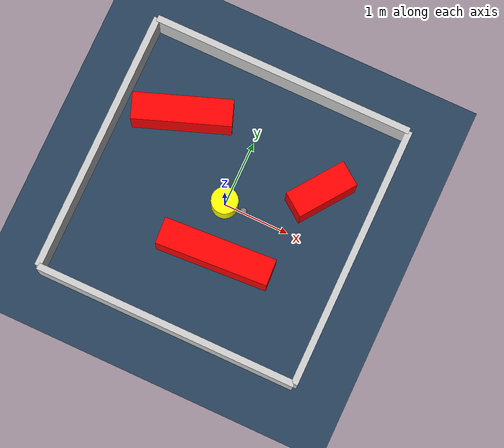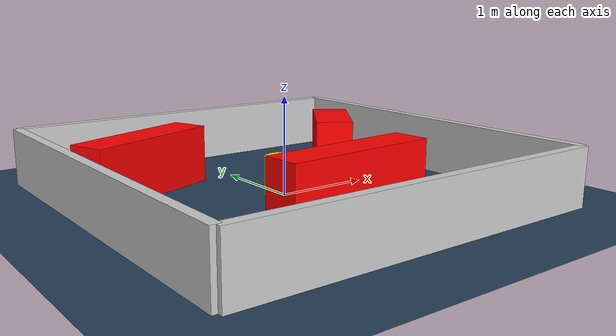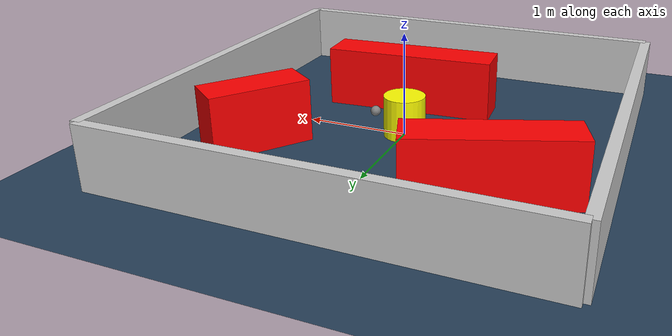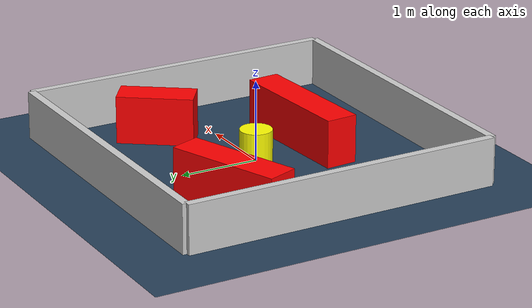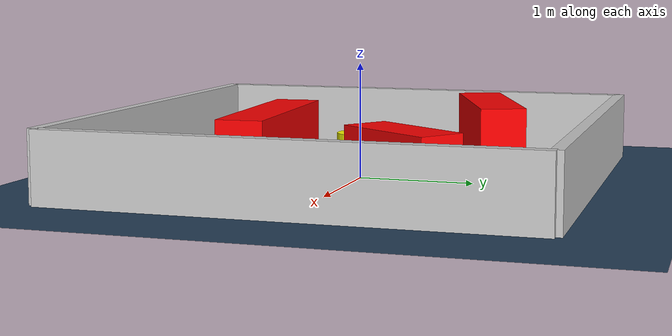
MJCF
<?xml version="1.0" ?>
<mujoco model="generated_environment">
  <option timestep="0.01" integrator="RK4" cone="elliptic"/>
  <default>
    <geom density="1"/>
  </default>
  <asset>
    <texture builtin="gradient" height="3072" rgb1="0.3 0.5 0.7" rgb2="0 0 0" type="skybox" width="512"/>
    <texture builtin="checker" height="300" mark="edge" markrgb="0.8 0.8 0.8" name="groundplane" rgb1="0.2 0.3 0.4" rgb2="0.1 0.2 0.3" type="2d" width="300"/>
    <material name="groundplane" reflectance="0.2" texrepeat="5 5" texture="groundplane" texuniform="true"/>
    <material name="robot" rgba="0.0 1.0 0.0 1"/>
  </asset>
  <worldbody>
    <light dir="0 0 -1" directional="true" pos="0 0 1.5"/>
    <geom condim="4" friction="1.0 0.005 0.001" material="groundplane" name="floor" size="0 0 0.05" type="plane"/>
    <body name="walls">
      <geom name="wall_1" condim="4" pos="-2.0 0.0 0.3" rgba="0.800000011920929 0.800000011920929 0.800000011920929 1.0" size="0.05 2.0 0.3" type="box"/>
      <geom name="wall_2" condim="4" pos="2.0 0.0 0.3" rgba="0.800000011920929 0.800000011920929 0.800000011920929 1.0" size="0.05 2.0 0.3" type="box"/>
      <geom name="wall_3" condim="4" pos="0.0 -2.0 0.3" rgba="0.800000011920929 0.800000011920929 0.800000011920929 1.0" size="2.0 0.05 0.3" type="box"/>
      <geom name="wall_4" condim="4" pos="0.0 2.0 0.3" rgba="0.800000011920929 0.800000011920929 0.800000011920929 1.0" size="2.0 0.05 0.3" type="box"/>
    </body>
    <body name="robot">
      <joint name="joint_x" type="slide" pos="0 0 0" axis="1 0 0"/>
      <joint name="joint_y" type="slide" pos="0 0 0" axis="0 1 0"/>
      <geom name="robot" type="sphere" pos="0.3 0.0 0.2" size="0.05" mass="5." friction="1.0 0.005 0.0001" condim="4" rgba="0.5 0.5 0.5 1.0"/>
      <site name="sensor_ball"/>
    </body>
    <body name="obstacle_movable_1">
      <geom name="obstacle_movable_1" condim="4" pos="0.0 0.0 0.2" euler="0 0 0.0" friction="1.0 0.005 0.001" rgba="1.0 1.0 0.0 1.0" size="0.2 0.2 0.0" type="cylinder" mass="0.1"/>
      <joint type="free"/>
    </body>
    <body name="obstacle_2_static">
      <geom name="obstacle_2_static" condim="4" pos="-1.1014973809957114 0.9241414046944036 0.3" euler="0 0 200.09098002609028" friction="1.0 0.005 0.001" rgba="1 0 0 1" size="0.735198649476162 0.2 0.3" type="box"/>
    </body>
    <body name="obstacle_3_static">
      <geom name="obstacle_3_static" condim="4" pos="1.2023620004547741 0.7026854203990511 0.3" euler="0 0 54.061447639938365" friction="1.0 0.005 0.001" rgba="1 0 0 1" size="0.4719451150988079 0.2 0.3" type="box"/>
    </body>
    <body name="obstacle_4_static">
      <geom name="obstacle_4_static" condim="4" pos="0.2078564323335057 -0.7519832159361228 0.3" euler="0 0 183.52825990800264" friction="1.0 0.005 0.001" rgba="1 0 0 1" size="0.8491355599197881 0.2 0.3" type="box"/>
    </body>
  </worldbody>
  <actuator>
    <motor name="actuator_x" joint="joint_x" gear="1" ctrlrange="-1 1"/>
    <motor name="actuator_y" joint="joint_y" gear="1" ctrlrange="-1 1"/>
  </actuator>
</mujoco>
